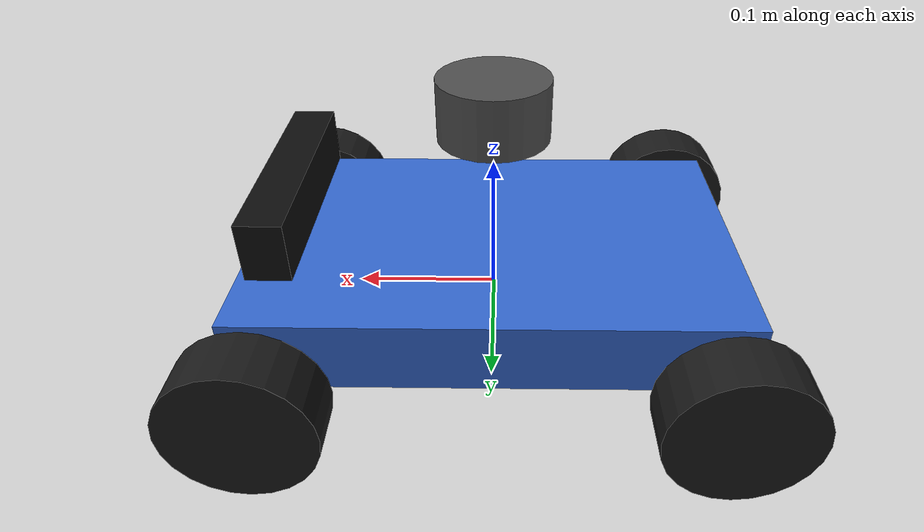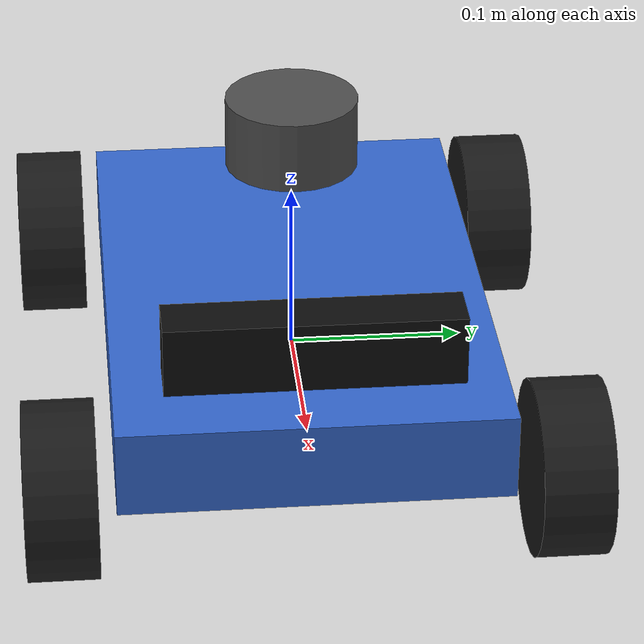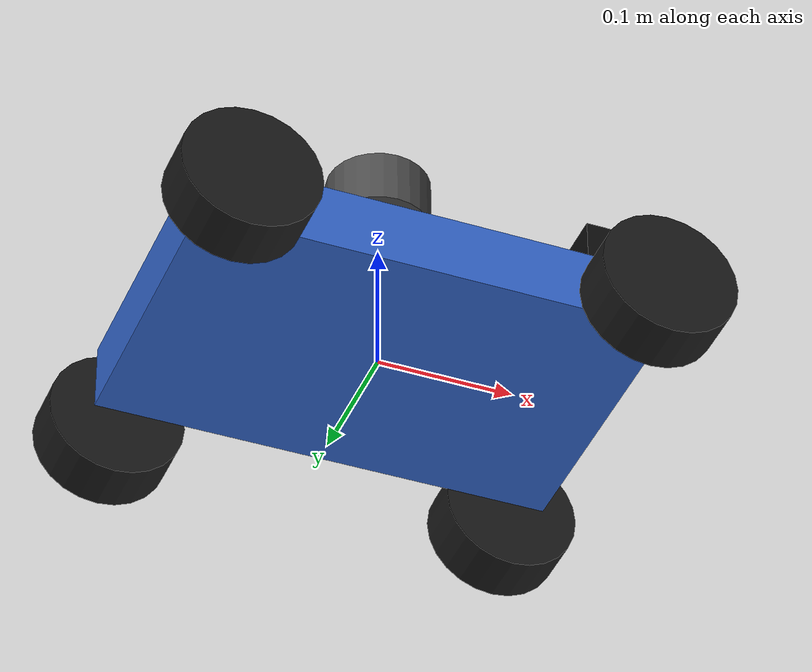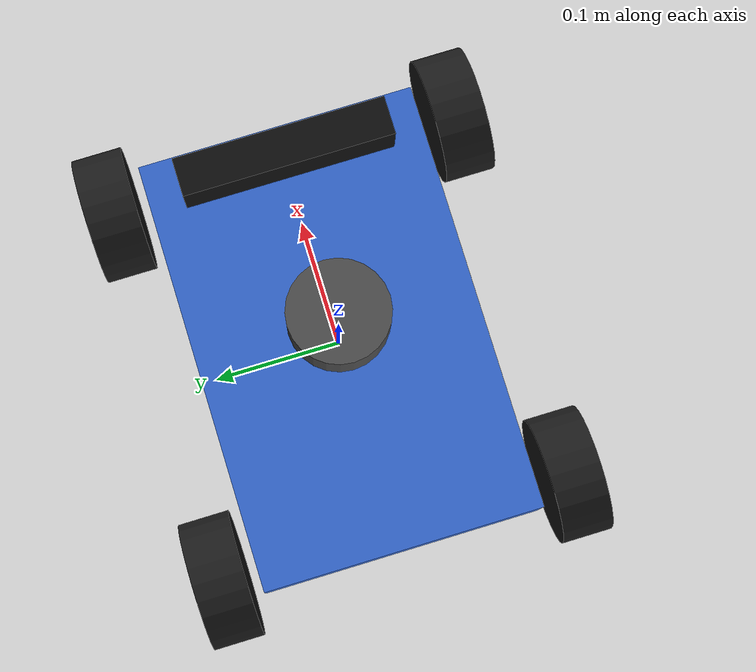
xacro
<?xml version="1.0"?>
<robot name="mi_robot" xmlns:xacro="http://www.ros.org/wiki/xacro">

  <!-- ===================== Parámetros de la variante ===================== -->
  <!-- TODO (Parte 1): reemplace cada ${TODO} por el valor de su variante -->
  <xacro:property name="rueda_radio" value="0.050"/>
  <xacro:property name="distancia_ejes" value="0.30"/>      <!-- wheelbase (m) -->
  <xacro:property name="separacion_ruedas" value="0.28"/>   <!-- track (m) -->
  <xacro:property name="lx" value="${distancia_ejes / 2.0}"/>
  <xacro:property name="ly" value="${separacion_ruedas / 2.0}"/>
  <xacro:property name="rueda_ancho" value="0.04"/>
  <xacro:property name="rueda_masa" value="0.3"/>

  <!-- Chasis (dado) -->
  <xacro:property name="chasis_largo" value="${distancia_ejes + 0.04}"/>
  <xacro:property name="chasis_ancho" value="${separacion_ruedas - rueda_ancho - 0.02}"/>
  <xacro:property name="chasis_alto" value="0.05"/>
  <xacro:property name="chasis_masa" value="3.0"/>
  <xacro:property name="chasis_tope" value="${0.02 + chasis_alto / 2.0}"/>

  <!-- RPLIDAR A3 (hoja de datos): Ø76 mm x 40.8 mm, ~190 g -->
  <xacro:property name="lidar_radio" value="0.038"/>
  <xacro:property name="lidar_alto" value="0.041"/>
  <xacro:property name="lidar_masa" value="0.19"/>
  <xacro:property name="lidar_x" value="0.0"/>
  <xacro:property name="lidar_z" value="0.14"/>

  <!-- Orbbec Astra (hoja de datos): 165 x 30 x 40 mm, ~300 g -->
  <xacro:property name="cam_x_dim" value="0.030"/>   <!-- profundidad -->
  <xacro:property name="cam_y_dim" value="0.165"/>   <!-- ancho -->
  <xacro:property name="cam_z_dim" value="0.040"/>   <!-- alto -->
  <xacro:property name="cam_masa" value="0.3"/>
  <xacro:property name="cam_x" value="0.14"/>
  <xacro:property name="cam_z" value="0.08"/>

  <!-- ===================== Inercias (dadas) ===================== -->
  <xacro:macro name="inercia_caja" params="m x y z">
    <inertia ixx="${m*(y*y + z*z)/12.0}" ixy="0" ixz="0"
             iyy="${m*(x*x + z*z)/12.0}" iyz="0"
             izz="${m*(x*x + y*y)/12.0}"/>
  </xacro:macro>
  <!-- Cilindro con eje a lo largo de z local -->
  <xacro:macro name="inercia_cilindro" params="m r h">
    <inertia ixx="${m*(3*r*r + h*h)/12.0}" ixy="0" ixz="0"
             iyy="${m*(3*r*r + h*h)/12.0}" iyz="0"
             izz="${m*r*r/2.0}"/>
  </xacro:macro>

  <!-- ===================== Chasis (dado) ===================== -->
  <link name="base_link">
    <visual>
      <origin xyz="0 0 0.02" rpy="0 0 0"/>
      <geometry><box size="${chasis_largo} ${chasis_ancho} ${chasis_alto}"/></geometry>
      <material name="azul"><color rgba="0.2 0.4 0.8 1"/></material>
    </visual>
    <collision>
      <origin xyz="0 0 0.02" rpy="0 0 0"/>
      <geometry><box size="${chasis_largo} ${chasis_ancho} ${chasis_alto}"/></geometry>
    </collision>
    <inertial>
      <origin xyz="0 0 0.02" rpy="0 0 0"/>
      <mass value="${chasis_masa}"/>
      <xacro:inercia_caja m="${chasis_masa}" x="${chasis_largo}" y="${chasis_ancho}" z="${chasis_alto}"/>
    </inertial>
  </link>

  <!-- ===================== Ruedas (Parte 1) ===================== -->
  <xacro:macro name="rueda" params="prefijo x_signo y_signo">
    <link name="rueda_${prefijo}">
      <visual>
        <geometry><cylinder radius="${rueda_radio}" length="${rueda_ancho}"/></geometry>
        <material name="negro"><color rgba="0.1 0.1 0.1 1"/></material>
      </visual>
      <collision>
        <geometry><sphere radius="${rueda_radio}"/></geometry>
      </collision>
      <inertial>
        <mass value="${rueda_masa}"/>
        <xacro:inercia_cilindro m="${rueda_masa}" r="${rueda_radio}" h="${rueda_ancho}"/>
      </inertial>
    </link>

    <joint name="joint_rueda_${prefijo}" type="continuous">
      <parent link="base_link"/>
      <child link="rueda_${prefijo}"/>
      <origin xyz="${x_signo*lx} ${y_signo*ly} 0" rpy="${-pi/2} 0 0"/>
      <axis xyz="0 0 1"/>
    </joint>
  </xacro:macro>

  <xacro:rueda prefijo="del_izq" x_signo="1" y_signo="1"/>
  <!-- TODO: instanciar del_der, tra_izq y tra_der -->
  <xacro:rueda prefijo="del_der" x_signo="1"  y_signo="-1"/>
  <xacro:rueda prefijo="tra_izq" x_signo="-1" y_signo="1"/>
  <xacro:rueda prefijo="tra_der" x_signo="-1" y_signo="-1"/>

  <!-- ===================== RPLIDAR A3 (Parte 2) ===================== -->
  <!-- TODO: link "lidar_link" (cilindro) con dimensiones y masa de la hoja de datos:
       visual, collision e inertial -->
  <link name="lidar_link">
    <visual>
      <geometry><cylinder radius="${lidar_radio}" length="${lidar_alto}"/></geometry>
      <material name="gris"><color rgba="0.3 0.3 0.3 1"/></material>
    </visual>
    <collision>
      <geometry><cylinder radius="${lidar_radio}" length="${lidar_alto}"/></geometry>
    </collision>
    <inertial>
      <mass value="${lidar_masa}"/>
      <xacro:inercia_cilindro m="${lidar_masa}" r="${lidar_radio}" h="${lidar_alto}"/>
    </inertial>
  </link>
  <!-- TODO: joint fijo "joint_lidar" base_link -> lidar_link en la posición de su variante -->
  <joint name="joint_lidar" type="fixed">
    <parent link="base_link"/>
    <child link="lidar_link"/>
    <origin xyz="${lidar_x} 0 ${lidar_z}" rpy="0 0 0"/>
  </joint>

  <gazebo reference="lidar_link">
    <sensor name="rplidar_a3" type="gpu_lidar">
      <topic>/scan</topic>
      <gz_frame_id>lidar_link</gz_frame_id>
      <update_rate>10</update_rate>
      <always_on>1</always_on>
      <visualize>true</visualize>
      <lidar>
        <scan>
          <horizontal>
            <samples>1600</samples>          <!-- Enhanced: 16 kHz / 10 Hz = 1600 muestras por vuelta -->
            <resolution>1</resolution>
            <min_angle>-3.14159265</min_angle>
            <max_angle>3.14159265</max_angle>
          </horizontal>
        </scan>
        <range>
          <min>0.20</min>
          <max>25.0</max>
          <resolution>0.01</resolution>
        </range>
        <noise>
          <type>gaussian</type>
          <mean>0.0</mean>
          <stddev>0.01</stddev>
        </noise>
      </lidar>
    </sensor>
  </gazebo>

  <!-- ===================== Orbbec Astra (Parte 2) ===================== -->
  <!-- TODO: link "camara_link" (caja) con dimensiones y masa de la hoja de datos -->
  <link name="camara_link">
    <visual>
      <geometry><box size="${cam_x_dim} ${cam_y_dim} ${cam_z_dim}"/></geometry>
      <material name="negro_cam"><color rgba="0.05 0.05 0.05 1"/></material>
    </visual>
    <collision>
      <geometry><box size="${cam_x_dim} ${cam_y_dim} ${cam_z_dim}"/></geometry>
    </collision>
    <inertial>
      <mass value="${cam_masa}"/>
      <xacro:inercia_caja m="${cam_masa}" x="${cam_x_dim}" y="${cam_y_dim}" z="${cam_z_dim}"/>
    </inertial>
  </link>
  <!-- TODO: joint fijo "joint_camara" base_link -> camara_link en la posición de su variante -->
  <joint name="joint_camara" type="fixed">
    <parent link="base_link"/>
    <child link="camara_link"/>
    <origin xyz="${cam_x} 0 ${cam_z}" rpy="0 0 0"/>
  </joint>
  <!-- TODO: link "camara_optica_link" y joint fijo "joint_camara_optica" desde
       camara_link con rpy = (-π/2, 0, -π/2) (REP-103) -->
  <link name="camara_optica_link"/>
  <joint name="joint_camara_optica" type="fixed">
    <parent link="camara_link"/>
    <child link="camara_optica_link"/>
    <origin xyz="0 0 0" rpy="${-pi/2} 0 ${-pi/2}"/>
  </joint>

  <gazebo reference="camara_link">
    <sensor name="astra" type="rgbd_camera">
      <topic>/camara</topic>
      <gz_frame_id>camara_link</gz_frame_id>
      <update_rate>30</update_rate>
      <always_on>1</always_on>
      <camera>
        <horizontal_fov>1.0472</horizontal_fov>
        <image>
          <width>640</width>
          <height>480</height>
          <format>R8G8B8</format>
        </image>
        <clip>
          <near>0.6</near>
          <far>8.0</far>
        </clip>
        <depth_camera>
          <clip>
            <near>0.6</near>
            <far>8.0</far>
          </clip>
        </depth_camera>
      </camera>
    </sensor>
  </gazebo>

  <!-- ===================== Plugins de Gazebo (Parte 1) ===================== -->
  <xacro:macro name="motor" params="prefijo">
    <plugin filename="gz-sim-joint-controller-system" name="gz::sim::systems::JointController">
      <joint_name>joint_rueda_${prefijo}</joint_name>
      <use_force_commands>false</use_force_commands>
      <topic>/vel_rueda_${prefijo}</topic>
    </plugin>
  </xacro:macro>

  <gazebo>
    <xacro:motor prefijo="del_izq"/>
    <!-- TODO: motores de del_der, tra_izq y tra_der -->
    <xacro:motor prefijo="del_der"/>
    <xacro:motor prefijo="tra_izq"/>
    <xacro:motor prefijo="tra_der"/>
    <!-- TODO: plugin gz-sim-joint-state-publisher-system (encoders) -->
    <plugin filename="gz-sim-joint-state-publisher-system" name="gz::sim::systems::JointStatePublisher">
      <joint_name>joint_rueda_del_izq</joint_name>
      <joint_name>joint_rueda_del_der</joint_name>
      <joint_name>joint_rueda_tra_izq</joint_name>
      <joint_name>joint_rueda_tra_der</joint_name>
    </plugin>
  </gazebo>

</robot>
